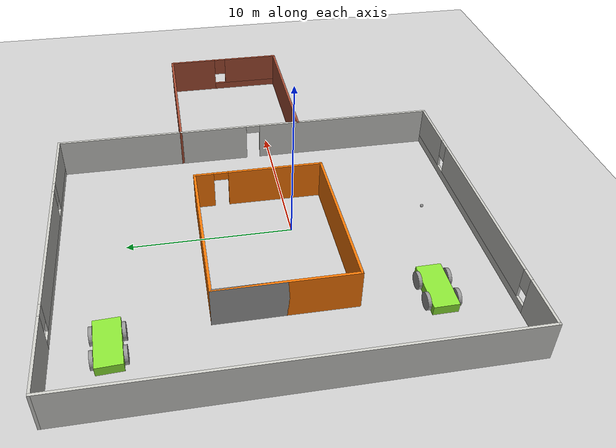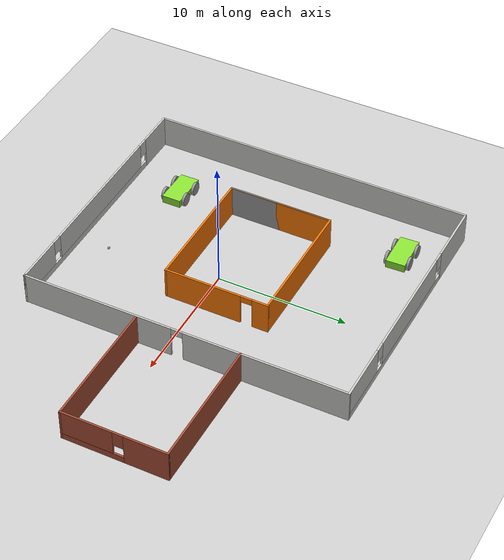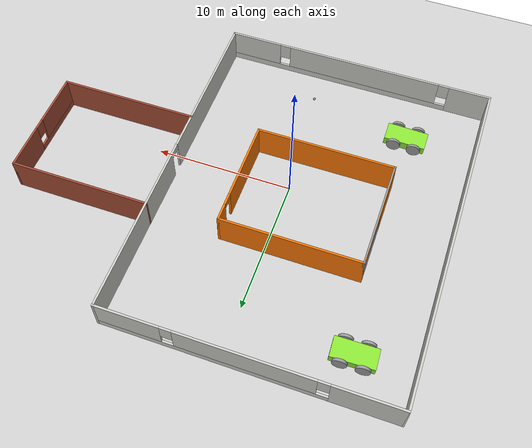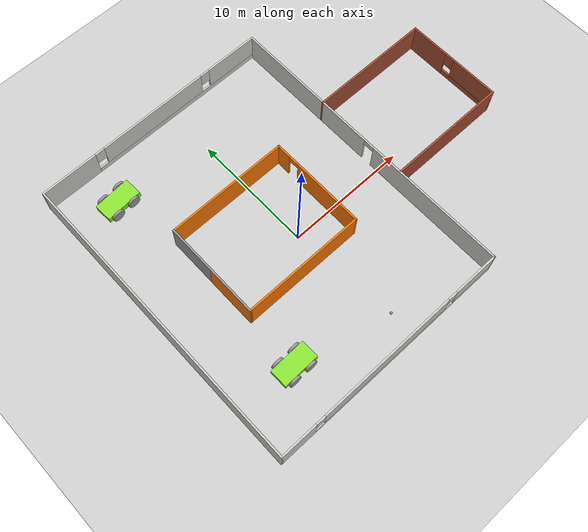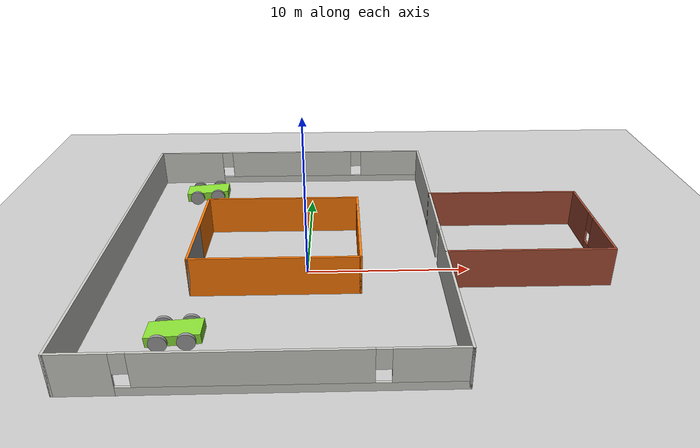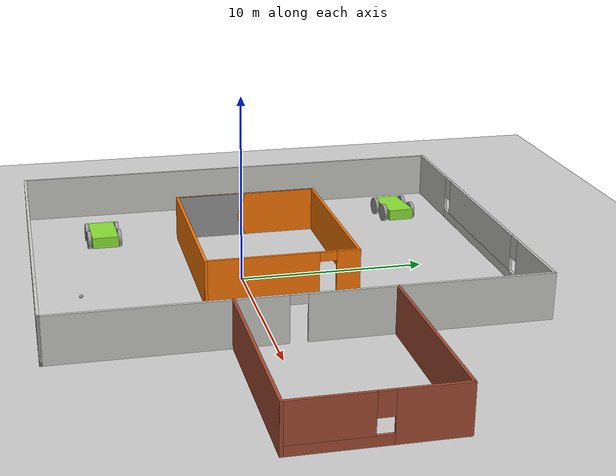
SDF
<sdf version="1.7">
 <world name="default">
  <plugin name="hello" filename="libhello.so"/>
  <light name="sun" type="directional">
   <pose>0 0 10 0 -0 0</pose>
   <diffuse>0.8 0.8 0.8 1</diffuse>
   <specular>0.2 0.2 0.2 1</specular>
   <attenuation>
    <range>1000</range>
    <constant>0.9</constant>
    <linear>0.01</linear>
    <quadratic>0.001</quadratic>
   </attenuation>
   <direction>-0.5 0.1 -0.9</direction>
   <spot><inner_angle>0</inner_angle><outer_angle>0</outer_angle><falloff>0</falloff></spot>
  </light>
  <model name="ground_plane">
   <static>1</static>
   <link name="link">
    <collision name="collision">
     <geometry><plane><normal>0 0 1</normal><size>100 100</size></plane></geometry>
     <surface>
      <contact><collide_bitmask>65535</collide_bitmask></contact>
      <friction><ode><mu>100</mu><mu2>50</mu2></ode></friction>
     </surface>
    </collision>
    <visual name="visual">
     <cast_shadows>0</cast_shadows>
     <geometry><plane><normal>0 0 1</normal><size>100 100</size></plane></geometry>
     <material>
      <script><uri>file://media/materials/scripts/gazebo.material</uri><name>Gazebo/Grey</name></script>
     </material>
    </visual>
   </link>
  </model>
  <gravity>0 0 -9.8</gravity>
  <magnetic_field>6e-06 2.3e-05 -4.2e-05</magnetic_field>
  <atmosphere type="adiabatic"/>
  <physics type="ode">
   <max_step_size>0.001</max_step_size>
   <real_time_factor>1</real_time_factor>
   <real_time_update_rate>1000</real_time_update_rate>
  </physics>
  <scene><ambient>0.4 0.4 0.4 1</ambient><background>0.7 0.7 0.7 1</background><shadows>1</shadows></scene>
  <spherical_coordinates>
   <surface_model>EARTH_WGS84</surface_model>
   <latitude_deg>0</latitude_deg>
   <longitude_deg>0</longitude_deg>
   <elevation>0</elevation>
   <heading_deg>0</heading_deg>
  </spherical_coordinates>
  <model name="building_env">
   <pose>3.21282 1.5276 0 0 -0 0</pose>
   <link name="Wall_36">
    <pose>-5 12.5 0 0 -0 0</pose>
    <visual name="Wall_36_Visual_0">
     <pose>-7.7073 0 1.25 0 -0 0</pose>
     <geometry><box><size>4.73541 0.15 2.5</size></box></geometry>
     <material>
      <script><uri>file://media/materials/scripts/gazebo.material</uri><name>Gazebo/CeilingTiled</name></script>
      <ambient>1 1 1 1</ambient>
     </material>
     <meta><layer>0</layer></meta>
    </visual>
    <collision name="Wall_36_Collision_0">
     <geometry><box><size>4.73541 0.15 2.5</size></box></geometry>
     <pose>-7.7073 0 1.25 0 -0 0</pose>
    </collision>
    <visual name="Wall_36_Visual_1">
     <pose>2.3677 0 0.25 0 -0 0</pose>
     <geometry><box><size>15.4146 0.15 0.5</size></box></geometry>
     <material>
      <script><uri>file://media/materials/scripts/gazebo.material</uri><name>Gazebo/CeilingTiled</name></script>
      <ambient>1 1 1 1</ambient>
     </material>
     <meta><layer>0</layer></meta>
    </visual>
    <collision name="Wall_36_Collision_1">
     <geometry><box><size>15.4146 0.15 0.5</size></box></geometry>
     <pose>2.3677 0 0.25 0 -0 0</pose>
    </collision>
    <visual name="Wall_36_Visual_2">
     <pose>0.099134 0 1.5 0 -0 0</pose>
     <geometry><box><size>9.27745 0.15 2</size></box></geometry>
     <material>
      <script><uri>file://media/materials/scripts/gazebo.material</uri><name>Gazebo/CeilingTiled</name></script>
      <ambient>1 1 1 1</ambient>
     </material>
     <meta><layer>0</layer></meta>
    </visual>
    <collision name="Wall_36_Collision_2">
     <geometry><box><size>9.27745 0.15 2</size></box></geometry>
     <pose>0.099134 0 1.5 0 -0 0</pose>
    </collision>
    <visual name="Wall_36_Visual_3">
     <pose>7.80643 0 1.5 0 -0 0</pose>
     <geometry><box><size>4.53714 0.15 2</size></box></geometry>
     <material>
      <script><uri>file://media/materials/scripts/gazebo.material</uri><name>Gazebo/CeilingTiled</name></script>
      <ambient>1 1 1 1</ambient>
     </material>
     <meta><layer>0</layer></meta>
    </visual>
    <collision name="Wall_36_Collision_3">
     <geometry><box><size>4.53714 0.15 2</size></box></geometry>
     <pose>7.80643 0 1.5 0 -0 0</pose>
    </collision>
    <visual name="Wall_36_Visual_4">
     <pose>-4.93959 0 1.9 0 -0 0</pose>
     <geometry><box><size>0.8 0.15 1.2</size></box></geometry>
     <material>
      <script><uri>file://media/materials/scripts/gazebo.material</uri><name>Gazebo/CeilingTiled</name></script>
      <ambient>1 1 1 1</ambient>
     </material>
     <meta><layer>0</layer></meta>
    </visual>
    <collision name="Wall_36_Collision_4">
     <geometry><box><size>0.8 0.15 1.2</size></box></geometry>
     <pose>-4.93959 0 1.9 0 -0 0</pose>
    </collision>
    <visual name="Wall_36_Visual_5">
     <pose>5.13786 0 1.9 0 -0 0</pose>
     <geometry><box><size>0.8 0.15 1.2</size></box></geometry>
     <material>
      <script><uri>file://media/materials/scripts/gazebo.material</uri><name>Gazebo/CeilingTiled</name></script>
      <ambient>1 1 1 1</ambient>
     </material>
     <meta><layer>0</layer></meta>
    </visual>
    <collision name="Wall_36_Collision_5">
     <geometry><box><size>0.8 0.15 1.2</size></box></geometry>
     <pose>5.13786 0 1.9 0 -0 0</pose>
    </collision>
   </link>
   <link name="Wall_38">
    <collision name="Wall_38_Collision">
     <geometry><box><size>25.15 0.15 2.5</size></box></geometry>
     <pose>0 0 1.25 0 -0 0</pose>
    </collision>
    <visual name="Wall_38_Visual">
     <pose>0 0 1.25 0 -0 0</pose>
     <geometry><box><size>25.15 0.15 2.5</size></box></geometry>
     <material>
      <script><uri>file://media/materials/scripts/gazebo.material</uri><name>Gazebo/CeilingTiled</name></script>
      <ambient>1 1 1 1</ambient>
     </material>
     <meta><layer>0</layer></meta>
    </visual>
    <pose>-15 0 0 0 -0 -1.5708</pose>
   </link>
   <link name="Wall_40">
    <pose>5 0 0 0 -0 -1.5708</pose>
    <visual name="Wall_40_Visual_0">
     <pose>-6.32697 0 1.25 0 -0 0</pose>
     <geometry><box><size>12.4961 0.15 2.5</size></box></geometry>
     <material>
      <script><uri>file://media/materials/scripts/gazebo.material</uri><name>Gazebo/CeilingTiled</name></script>
      <ambient>1 1 1 1</ambient>
     </material>
     <meta><layer>0</layer></meta>
    </visual>
    <collision name="Wall_40_Collision_0">
     <geometry><box><size>12.4961 0.15 2.5</size></box></geometry>
     <pose>-6.32697 0 1.25 0 -0 0</pose>
    </collision>
    <visual name="Wall_40_Visual_1">
     <pose>6.69803 0 1.25 0 -0 0</pose>
     <geometry><box><size>11.7539 0.15 2.5</size></box></geometry>
     <material>
      <script><uri>file://media/materials/scripts/gazebo.material</uri><name>Gazebo/CeilingTiled</name></script>
      <ambient>1 1 1 1</ambient>
     </material>
     <meta><layer>0</layer></meta>
    </visual>
    <collision name="Wall_40_Collision_1">
     <geometry><box><size>11.7539 0.15 2.5</size></box></geometry>
     <pose>6.69803 0 1.25 0 -0 0</pose>
    </collision>
    <visual name="Wall_40_Visual_2">
     <pose>0.37107 0 2.25 0 -0 0</pose>
     <geometry><box><size>0.9 0.15 0.5</size></box></geometry>
     <material>
      <script><uri>file://media/materials/scripts/gazebo.material</uri><name>Gazebo/CeilingTiled</name></script>
      <ambient>1 1 1 1</ambient>
     </material>
     <meta><layer>0</layer></meta>
    </visual>
    <collision name="Wall_40_Collision_2">
     <geometry><box><size>0.9 0.15 0.5</size></box></geometry>
     <pose>0.37107 0 2.25 0 -0 0</pose>
    </collision>
   </link>
   <link name="Wall_41">
    <collision name="Wall_41_Collision">
     <geometry><box><size>0.15 0.15 2.5</size></box></geometry>
     <pose>0 0 1.25 0 -0 0</pose>
    </collision>
    <visual name="Wall_41_Visual">
     <pose>0 0 1.25 0 -0 0</pose>
     <geometry><box><size>0.15 0.15 2.5</size></box></geometry>
     <material>
      <script><uri>file://media/materials/scripts/gazebo.material</uri><name>Gazebo/Grey</name></script>
      <ambient>1 1 1 1</ambient>
     </material>
     <meta><layer>0</layer></meta>
    </visual>
    <pose>5 -12.5 0 0 -0 0</pose>
   </link>
   <link name="Wall_49">
    <collision name="Wall_49_Collision">
     <geometry><box><size>8.15 0.15 2.5</size></box></geometry>
     <pose>0 0 1.25 0 -0 0</pose>
    </collision>
    <visual name="Wall_49_Visual">
     <pose>0 0 1.25 0 -0 0</pose>
     <geometry><box><size>8.15 0.15 2.5</size></box></geometry>
     <material>
      <script><uri>file://media/materials/scripts/gazebo.material</uri><name>Gazebo/Grey</name></script>
      <ambient>1 1 1 1</ambient>
     </material>
     <meta><layer>0</layer></meta>
    </visual>
    <pose>-10 0 0 0 -0 1.5708</pose>
   </link>
   <link name="Wall_50">
    <collision name="Wall_50_Collision">
     <geometry><box><size>8.15 0.15 2.5</size></box></geometry>
     <pose>0 0 1.25 0 -0 0</pose>
    </collision>
    <visual name="Wall_50_Visual">
     <pose>0 0 1.25 0 -0 0</pose>
     <geometry><box><size>8.15 0.15 2.5</size></box></geometry>
     <material>
      <script><uri>file://media/materials/scripts/gazebo.material</uri><name>Gazebo/Grey</name></script>
      <ambient>0.996078 0.47451 0.0196078 1</ambient>
     </material>
     <meta><layer>0</layer></meta>
    </visual>
    <pose>-10 0 0 0 -0 -1.5708</pose>
   </link>
   <link name="Wall_52">
    <pose>-5 -12.5 0 0 -0 0</pose>
    <visual name="Wall_52_Visual_0">
     <pose>-8.52725 0 1.25 0 -0 0</pose>
     <geometry><box><size>3.09551 0.15 2.5</size></box></geometry>
     <material>
      <script><uri>file://media/materials/scripts/gazebo.material</uri><name>Gazebo/CeilingTiled</name></script>
      <ambient>1 1 1 1</ambient>
     </material>
     <meta><layer>0</layer></meta>
    </visual>
    <collision name="Wall_52_Collision_0">
     <geometry><box><size>3.09551 0.15 2.5</size></box></geometry>
     <pose>-8.52725 0 1.25 0 -0 0</pose>
    </collision>
    <visual name="Wall_52_Visual_1">
     <pose>1.54775 0 0.25 0 -0 0</pose>
     <geometry><box><size>17.0545 0.15 0.5</size></box></geometry>
     <material>
      <script><uri>file://media/materials/scripts/gazebo.material</uri><name>Gazebo/CeilingTiled</name></script>
      <ambient>1 1 1 1</ambient>
     </material>
     <meta><layer>0</layer></meta>
    </visual>
    <collision name="Wall_52_Collision_1">
     <geometry><box><size>17.0545 0.15 0.5</size></box></geometry>
     <pose>1.54775 0 0.25 0 -0 0</pose>
    </collision>
    <visual name="Wall_52_Visual_2">
     <pose>-0.390191 0 1.5 0 -0 0</pose>
     <geometry><box><size>11.5786 0.15 2</size></box></geometry>
     <material>
      <script><uri>file://media/materials/scripts/gazebo.material</uri><name>Gazebo/CeilingTiled</name></script>
      <ambient>1 1 1 1</ambient>
     </material>
     <meta><layer>0</layer></meta>
    </visual>
    <collision name="Wall_52_Collision_2">
     <geometry><box><size>11.5786 0.15 2</size></box></geometry>
     <pose>-0.390191 0 1.5 0 -0 0</pose>
    </collision>
    <visual name="Wall_52_Visual_3">
     <pose>8.13705 0 1.5 0 -0 0</pose>
     <geometry><box><size>3.87589 0.15 2</size></box></geometry>
     <material>
      <script><uri>file://media/materials/scripts/gazebo.material</uri><name>Gazebo/CeilingTiled</name></script>
      <ambient>1 1 1 1</ambient>
     </material>
     <meta><layer>0</layer></meta>
    </visual>
    <collision name="Wall_52_Collision_3">
     <geometry><box><size>3.87589 0.15 2</size></box></geometry>
     <pose>8.13705 0 1.5 0 -0 0</pose>
    </collision>
    <visual name="Wall_52_Visual_4">
     <pose>-6.57949 0 1.9 0 -0 0</pose>
     <geometry><box><size>0.8 0.15 1.2</size></box></geometry>
     <material>
      <script><uri>file://media/materials/scripts/gazebo.material</uri><name>Gazebo/CeilingTiled</name></script>
      <ambient>1 1 1 1</ambient>
     </material>
     <meta><layer>0</layer></meta>
    </visual>
    <collision name="Wall_52_Collision_4">
     <geometry><box><size>0.8 0.15 1.2</size></box></geometry>
     <pose>-6.57949 0 1.9 0 -0 0</pose>
    </collision>
    <visual name="Wall_52_Visual_5">
     <pose>5.79911 0 1.9 0 -0 0</pose>
     <geometry><box><size>0.8 0.15 1.2</size></box></geometry>
     <material>
      <script><uri>file://media/materials/scripts/gazebo.material</uri><name>Gazebo/CeilingTiled</name></script>
      <ambient>1 1 1 1</ambient>
     </material>
     <meta><layer>0</layer></meta>
    </visual>
    <collision name="Wall_52_Collision_5">
     <geometry><box><size>0.8 0.15 1.2</size></box></geometry>
     <pose>5.79911 0 1.9 0 -0 0</pose>
    </collision>
   </link>
   <link name="Wall_54">
    <collision name="Wall_54_Collision">
     <geometry><box><size>10.15 0.15 2.5</size></box></geometry>
     <pose>0 0 1.25 0 -0 0</pose>
    </collision>
    <visual name="Wall_54_Visual">
     <pose>0 0 1.25 0 -0 0</pose>
     <geometry><box><size>10.15 0.15 2.5</size></box></geometry>
     <material>
      <script><uri>file://media/materials/scripts/gazebo.material</uri><name>Gazebo/Grey</name></script>
      <ambient>0.996078 0.47451 0.0196078 1</ambient>
     </material>
     <meta><layer>0</layer></meta>
    </visual>
    <pose>-5 4 0 0 -0 0</pose>
   </link>
   <link name="Wall_56">
    <collision name="Wall_56_Collision">
     <geometry><box><size>10.15 0.15 2.5</size></box></geometry>
     <pose>0 0 1.25 0 -0 0</pose>
    </collision>
    <visual name="Wall_56_Visual">
     <pose>0 0 1.25 0 -0 0</pose>
     <geometry><box><size>10.15 0.15 2.5</size></box></geometry>
     <material>
      <script><uri>file://media/materials/scripts/gazebo.material</uri><name>Gazebo/Grey</name></script>
      <ambient>0.996078 0.47451 0.0196078 1</ambient>
     </material>
     <meta><layer>0</layer></meta>
    </visual>
    <pose>-5 -4 0 0 -0 0</pose>
   </link>
   <link name="Wall_58">
    <pose>0 0 0 0 -0 -1.5708</pose>
    <visual name="Wall_58_Visual_0">
     <pose>-3.43914 0 1.25 0 -0 0</pose>
     <geometry><box><size>1.27172 0.15 2.5</size></box></geometry>
     <material>
      <script><uri>file://media/materials/scripts/gazebo.material</uri><name>Gazebo/Grey</name></script>
      <ambient>0.996078 0.47451 0.0196078 1</ambient>
     </material>
     <meta><layer>0</layer></meta>
    </visual>
    <collision name="Wall_58_Collision_0">
     <geometry><box><size>1.27172 0.15 2.5</size></box></geometry>
     <pose>-3.43914 0 1.25 0 -0 0</pose>
    </collision>
    <visual name="Wall_58_Visual_1">
     <pose>1.08586 0 1.25 0 -0 0</pose>
     <geometry><box><size>5.97828 0.15 2.5</size></box></geometry>
     <material>
      <script><uri>file://media/materials/scripts/gazebo.material</uri><name>Gazebo/Grey</name></script>
      <ambient>0.996078 0.47451 0.0196078 1</ambient>
     </material>
     <meta><layer>0</layer></meta>
    </visual>
    <collision name="Wall_58_Collision_1">
     <geometry><box><size>5.97828 0.15 2.5</size></box></geometry>
     <pose>1.08586 0 1.25 0 -0 0</pose>
    </collision>
    <visual name="Wall_58_Visual_2">
     <pose>-2.35328 0 2.25 0 -0 0</pose>
     <geometry><box><size>0.9 0.15 0.5</size></box></geometry>
     <material>
      <script><uri>file://media/materials/scripts/gazebo.material</uri><name>Gazebo/Grey</name></script>
      <ambient>0.996078 0.47451 0.0196078 1</ambient>
     </material>
     <meta><layer>0</layer></meta>
    </visual>
    <collision name="Wall_58_Collision_2">
     <geometry><box><size>0.9 0.15 0.5</size></box></geometry>
     <pose>-2.35328 0 2.25 0 -0 0</pose>
    </collision>
   </link>
   <link name="Wall_60">
    <collision name="Wall_60_Collision">
     <geometry><box><size>10.15 0.15 2.5</size></box></geometry>
     <pose>0 0 1.25 0 -0 0</pose>
    </collision>
    <visual name="Wall_60_Visual">
     <pose>0 0 1.25 0 -0 0</pose>
     <geometry><box><size>10.15 0.15 2.5</size></box></geometry>
     <material>
      <script><uri>file://media/materials/scripts/gazebo.material</uri><name>Gazebo/Bricks</name></script>
      <ambient>1 1 1 1</ambient>
     </material>
     <meta><layer>0</layer></meta>
    </visual>
    <pose>10 4.5 0 0 -0 0</pose>
   </link>
   <link name="Wall_62">
    <collision name="Wall_62_Collision">
     <geometry><box><size>10.15 0.15 2.5</size></box></geometry>
     <pose>0 0 1.25 0 -0 0</pose>
    </collision>
    <visual name="Wall_62_Visual">
     <pose>0 0 1.25 0 -0 0</pose>
     <geometry><box><size>10.15 0.15 2.5</size></box></geometry>
     <material>
      <script><uri>file://media/materials/scripts/gazebo.material</uri><name>Gazebo/Bricks</name></script>
      <ambient>1 1 1 1</ambient>
     </material>
     <meta><layer>0</layer></meta>
    </visual>
    <pose>10 -3.5 0 0 -0 0</pose>
   </link>
   <link name="Wall_64">
    <pose>15 0.5 0 0 -0 -1.5708</pose>
    <visual name="Wall_64_Visual_0">
     <pose>-2.39709 0 1.25 0 -0 0</pose>
     <geometry><box><size>3.35582 0.15 2.5</size></box></geometry>
     <material>
      <script><uri>file://media/materials/scripts/gazebo.material</uri><name>Gazebo/Bricks</name></script>
      <ambient>1 1 1 1</ambient>
     </material>
     <meta><layer>0</layer></meta>
    </visual>
    <collision name="Wall_64_Collision_0">
     <geometry><box><size>3.35582 0.15 2.5</size></box></geometry>
     <pose>-2.39709 0 1.25 0 -0 0</pose>
    </collision>
    <visual name="Wall_64_Visual_1">
     <pose>1.67791 0 0.25 0 -0 0</pose>
     <geometry><box><size>4.79418 0.15 0.5</size></box></geometry>
     <material>
      <script><uri>file://media/materials/scripts/gazebo.material</uri><name>Gazebo/Bricks</name></script>
      <ambient>1 1 1 1</ambient>
     </material>
     <meta><layer>0</layer></meta>
    </visual>
    <collision name="Wall_64_Collision_1">
     <geometry><box><size>4.79418 0.15 0.5</size></box></geometry>
     <pose>1.67791 0 0.25 0 -0 0</pose>
    </collision>
    <visual name="Wall_64_Visual_2">
     <pose>2.07791 0 1.5 0 -0 0</pose>
     <geometry><box><size>3.99418 0.15 2</size></box></geometry>
     <material>
      <script><uri>file://media/materials/scripts/gazebo.material</uri><name>Gazebo/Bricks</name></script>
      <ambient>1 1 1 1</ambient>
     </material>
     <meta><layer>0</layer></meta>
    </visual>
    <collision name="Wall_64_Collision_2">
     <geometry><box><size>3.99418 0.15 2</size></box></geometry>
     <pose>2.07791 0 1.5 0 -0 0</pose>
    </collision>
    <visual name="Wall_64_Visual_3">
     <pose>-0.31918 0 1.9 0 -0 0</pose>
     <geometry><box><size>0.8 0.15 1.2</size></box></geometry>
     <material>
      <script><uri>file://media/materials/scripts/gazebo.material</uri><name>Gazebo/Bricks</name></script>
      <ambient>1 1 1 1</ambient>
     </material>
     <meta><layer>0</layer></meta>
    </visual>
    <collision name="Wall_64_Collision_3">
     <geometry><box><size>0.8 0.15 1.2</size></box></geometry>
     <pose>-0.31918 0 1.9 0 -0 0</pose>
    </collision>
   </link>
   <static>1</static>
  </model>
  <model name="car_robot">
   <link name="link_2">
    <inertial>
     <mass>1</mass>
     <inertia><ixx>0.145833</ixx><ixy>0</ixy><ixz>0</ixz><iyy>0.145833</iyy><iyz>0</iyz><izz>0.125</izz></inertia>
    </inertial>
    <pose>-0.75 -0.853048 0 1.5707 -0 0</pose>
    <visual name="visual">
     <geometry><cylinder><radius>0.5</radius><length>0.2</length></cylinder></geometry>
     <material>
      <lighting>1</lighting>
      <script><uri>file://media/materials/scripts/gazebo.material</uri><name>Gazebo/Grey</name></script>
      <shader type="pixel"><normal_map>__default__</normal_map></shader>
      <ambient>0 0 0 1</ambient>
      <diffuse>0.18 0.204 0.212 1</diffuse>
      <specular>0.01 0.01 0.01 1</specular>
      <emissive>0 0 0 1</emissive>
     </material>
    </visual>
    <collision name="collision">
     <geometry><cylinder><radius>0.5</radius><length>0.2</length></cylinder></geometry>
     <surface>
      <friction>
       <ode><mu>1</mu><mu2>1</mu2><fdir1>0 0 0</fdir1><slip1>0</slip1><slip2>0</slip2></ode>
       <torsional>
        <coefficient>1</coefficient>
        <patch_radius>0</patch_radius>
        <surface_radius>0</surface_radius>
        <use_patch_radius>1</use_patch_radius>
        <ode><slip>0</slip></ode>
       </torsional>
      </friction>
      <bounce><restitution_coefficient>0</restitution_coefficient><threshold>1e+06</threshold></bounce>
      <contact>
       <collide_without_contact>0</collide_without_contact>
       <collide_without_contact_bitmask>1</collide_without_contact_bitmask>
       <collide_bitmask>1</collide_bitmask>
       <ode>
        <soft_cfm>0</soft_cfm>
        <soft_erp>0.2</soft_erp>
        <kp>1e+13</kp>
        <kd>1</kd>
        <max_vel>0.01</max_vel>
        <min_depth>0</min_depth>
       </ode>
       <bullet>
        <split_impulse>1</split_impulse>
        <split_impulse_penetration_threshold>-0.01</split_impulse_penetration_threshold>
        <soft_cfm>0</soft_cfm>
        <soft_erp>0.2</soft_erp>
        <kp>1e+13</kp>
        <kd>1</kd>
       </bullet>
      </contact>
     </surface>
    </collision>
   </link>
   <link name="link_2_clone">
    <inertial>
     <mass>1</mass>
     <inertia><ixx>0.145833</ixx><ixy>0</ixy><ixz>0</ixz><iyy>0.145833</iyy><iyz>0</iyz><izz>0.125</izz></inertia>
    </inertial>
    <pose>0.75 -0.853048 0 1.5707 -0 0</pose>
    <visual name="visual">
     <geometry><cylinder><radius>0.5</radius><length>0.2</length></cylinder></geometry>
     <material>
      <lighting>1</lighting>
      <script><uri>file://media/materials/scripts/gazebo.material</uri><name>Gazebo/Grey</name></script>
      <shader type="pixel"><normal_map>__default__</normal_map></shader>
      <ambient>0 0 0 1</ambient>
      <diffuse>0.18 0.204 0.212 1</diffuse>
      <specular>0.01 0.01 0.01 1</specular>
      <emissive>0 0 0 1</emissive>
     </material>
    </visual>
    <collision name="collision">
     <geometry><cylinder><radius>0.5</radius><length>0.2</length></cylinder></geometry>
     <surface>
      <friction>
       <ode><mu>1</mu><mu2>1</mu2><fdir1>0 0 0</fdir1><slip1>0</slip1><slip2>0</slip2></ode>
       <torsional>
        <coefficient>1</coefficient>
        <patch_radius>0</patch_radius>
        <surface_radius>0</surface_radius>
        <use_patch_radius>1</use_patch_radius>
        <ode><slip>0</slip></ode>
       </torsional>
      </friction>
      <bounce><restitution_coefficient>0</restitution_coefficient><threshold>1e+06</threshold></bounce>
      <contact>
       <collide_without_contact>0</collide_without_contact>
       <collide_without_contact_bitmask>1</collide_without_contact_bitmask>
       <collide_bitmask>1</collide_bitmask>
       <ode>
        <soft_cfm>0</soft_cfm>
        <soft_erp>0.2</soft_erp>
        <kp>1e+13</kp>
        <kd>1</kd>
        <max_vel>0.01</max_vel>
        <min_depth>0</min_depth>
       </ode>
       <bullet>
        <split_impulse>1</split_impulse>
        <split_impulse_penetration_threshold>-0.01</split_impulse_penetration_threshold>
        <soft_cfm>0</soft_cfm>
        <soft_erp>0.2</soft_erp>
        <kp>1e+13</kp>
        <kd>1</kd>
       </bullet>
      </contact>
     </surface>
    </collision>
   </link>
   <link name="link_2_clone_0">
    <inertial>
     <mass>1</mass>
     <inertia><ixx>0.145833</ixx><ixy>0</ixy><ixz>0</ixz><iyy>0.145833</iyy><iyz>0</iyz><izz>0.125</izz></inertia>
    </inertial>
    <pose>-0.75 0.847048 0 1.5707 -0 0</pose>
    <visual name="visual">
     <geometry><cylinder><radius>0.5</radius><length>0.2</length></cylinder></geometry>
     <material>
      <lighting>1</lighting>
      <script><uri>file://media/materials/scripts/gazebo.material</uri><name>Gazebo/Grey</name></script>
      <shader type="pixel"><normal_map>__default__</normal_map></shader>
      <ambient>0 0 0 1</ambient>
      <diffuse>0.18 0.204 0.212 1</diffuse>
      <specular>0.01 0.01 0.01 1</specular>
      <emissive>0 0 0 1</emissive>
     </material>
    </visual>
    <collision name="collision">
     <geometry><cylinder><radius>0.5</radius><length>0.2</length></cylinder></geometry>
     <surface>
      <friction>
       <ode><mu>1</mu><mu2>1</mu2><fdir1>0 0 0</fdir1><slip1>0</slip1><slip2>0</slip2></ode>
       <torsional>
        <coefficient>1</coefficient>
        <patch_radius>0</patch_radius>
        <surface_radius>0</surface_radius>
        <use_patch_radius>1</use_patch_radius>
        <ode><slip>0</slip></ode>
       </torsional>
      </friction>
      <bounce><restitution_coefficient>0</restitution_coefficient><threshold>1e+06</threshold></bounce>
      <contact>
       <collide_without_contact>0</collide_without_contact>
       <collide_without_contact_bitmask>1</collide_without_contact_bitmask>
       <collide_bitmask>1</collide_bitmask>
       <ode>
        <soft_cfm>0</soft_cfm>
        <soft_erp>0.2</soft_erp>
        <kp>1e+13</kp>
        <kd>1</kd>
        <max_vel>0.01</max_vel>
        <min_depth>0</min_depth>
       </ode>
       <bullet>
        <split_impulse>1</split_impulse>
        <split_impulse_penetration_threshold>-0.01</split_impulse_penetration_threshold>
        <soft_cfm>0</soft_cfm>
        <soft_erp>0.2</soft_erp>
        <kp>1e+13</kp>
        <kd>1</kd>
       </bullet>
      </contact>
     </surface>
    </collision>
   </link>
   <link name="link_2_clone_1">
    <inertial>
     <mass>1</mass>
     <inertia><ixx>0.145833</ixx><ixy>0</ixy><ixz>0</ixz><iyy>0.145833</iyy><iyz>0</iyz><izz>0.125</izz></inertia>
    </inertial>
    <pose>0.75 0.847048 0 1.5707 -0 0</pose>
    <visual name="visual">
     <geometry><cylinder><radius>0.5</radius><length>0.2</length></cylinder></geometry>
     <material>
      <lighting>1</lighting>
      <script><uri>file://media/materials/scripts/gazebo.material</uri><name>Gazebo/Grey</name></script>
      <shader type="pixel"><normal_map>__default__</normal_map></shader>
      <ambient>0 0 0 1</ambient>
      <diffuse>0.18 0.204 0.212 1</diffuse>
      <specular>0.01 0.01 0.01 1</specular>
      <emissive>0 0 0 1</emissive>
     </material>
    </visual>
    <collision name="collision">
     <geometry><cylinder><radius>0.5</radius><length>0.2</length></cylinder></geometry>
     <surface>
      <friction>
       <ode><mu>1</mu><mu2>1</mu2><fdir1>0 0 0</fdir1><slip1>0</slip1><slip2>0</slip2></ode>
       <torsional>
        <coefficient>1</coefficient>
        <patch_radius>0</patch_radius>
        <surface_radius>0</surface_radius>
        <use_patch_radius>1</use_patch_radius>
        <ode><slip>0</slip></ode>
       </torsional>
      </friction>
      <bounce><restitution_coefficient>0</restitution_coefficient><threshold>1e+06</threshold></bounce>
      <contact>
       <collide_without_contact>0</collide_without_contact>
       <collide_without_contact_bitmask>1</collide_without_contact_bitmask>
       <collide_bitmask>1</collide_bitmask>
       <ode>
        <soft_cfm>0</soft_cfm>
        <soft_erp>0.2</soft_erp>
        <kp>1e+13</kp>
        <kd>1</kd>
        <max_vel>0.01</max_vel>
        <min_depth>0</min_depth>
       </ode>
       <bullet>
        <split_impulse>1</split_impulse>
        <split_impulse_penetration_threshold>-0.01</split_impulse_penetration_threshold>
        <soft_cfm>0</soft_cfm>
        <soft_erp>0.2</soft_erp>
        <kp>1e+13</kp>
        <kd>1</kd>
       </bullet>
      </contact>
     </surface>
    </collision>
   </link>
   <link name="link_5">
    <inertial>
     <mass>1</mass>
     <inertia>
      <ixx>0.166667</ixx>
      <ixy>0</ixy>
      <ixz>0</ixz>
      <iyy>0.166667</iyy>
      <iyz>0</iyz>
      <izz>0.166667</izz>
     </inertia>
    </inertial>
    <pose>0 0.012 0 0 -0 0</pose>
    <visual name="visual">
     <geometry><box><size>3 1.47 0.6</size></box></geometry>
     <material>
      <lighting>1</lighting>
      <script><uri>file://media/materials/scripts/gazebo.material</uri><name>Gazebo/Grey</name></script>
      <shader type="pixel"><normal_map>__default__</normal_map></shader>
      <ambient>0.306 0.604 0.024 1</ambient>
      <diffuse>0.541 0.886 0.204 1</diffuse>
      <specular>0.01 0.01 0.01 1</specular>
      <emissive>0 0 0 1</emissive>
     </material>
    </visual>
    <collision name="collision">
     <geometry><box><size>3 1.5 0.6</size></box></geometry>
     <surface>
      <friction>
       <ode><mu>1</mu><mu2>1</mu2><fdir1>0 0 0</fdir1><slip1>0</slip1><slip2>0</slip2></ode>
       <torsional>
        <coefficient>1</coefficient>
        <patch_radius>0</patch_radius>
        <surface_radius>0</surface_radius>
        <use_patch_radius>1</use_patch_radius>
        <ode><slip>0</slip></ode>
       </torsional>
      </friction>
      <bounce><restitution_coefficient>0</restitution_coefficient><threshold>1e+06</threshold></bounce>
      <contact>
       <collide_without_contact>0</collide_without_contact>
       <collide_without_contact_bitmask>1</collide_without_contact_bitmask>
       <collide_bitmask>1</collide_bitmask>
       <ode>
        <soft_cfm>0</soft_cfm>
        <soft_erp>0.2</soft_erp>
        <kp>1e+13</kp>
        <kd>1</kd>
        <max_vel>0.01</max_vel>
        <min_depth>0</min_depth>
       </ode>
       <bullet>
        <split_impulse>1</split_impulse>
        <split_impulse_penetration_threshold>-0.01</split_impulse_penetration_threshold>
        <soft_cfm>0</soft_cfm>
        <soft_erp>0.2</soft_erp>
        <kp>1e+13</kp>
        <kd>1</kd>
       </bullet>
      </contact>
     </surface>
    </collision>
   </link>
   <joint name="link_5_JOINT_10" type="revolute">
    <parent>link_5</parent>
    <child>link_2</child>
    <axis>
     <xyz>0 0 1</xyz>
     <limit>
      <lower>-1.79769e+308</lower>
      <upper>1.79769e+308</upper>
      <effort>-1</effort>
      <velocity>-1</velocity>
     </limit>
     <dynamics>
      <spring_reference>0</spring_reference>
      <spring_stiffness>0</spring_stiffness>
      <damping>0</damping>
     </dynamics>
    </axis>
    <physics>
     <ode><limit><cfm>0</cfm><erp>0.2</erp></limit><suspension><cfm>0</cfm><erp>0.2</erp></suspension></ode>
    </physics>
   </joint>
   <joint name="link_5_JOINT_11" type="revolute">
    <parent>link_5</parent>
    <child>link_2_clone</child>
    <axis>
     <xyz>0 0 1</xyz>
     <limit>
      <lower>-1.79769e+308</lower>
      <upper>1.79769e+308</upper>
      <effort>-1</effort>
      <velocity>-1</velocity>
     </limit>
     <dynamics>
      <spring_reference>0</spring_reference>
      <spring_stiffness>0</spring_stiffness>
      <damping>0</damping>
     </dynamics>
    </axis>
    <physics>
     <ode><limit><cfm>0</cfm><erp>0.2</erp></limit><suspension><cfm>0</cfm><erp>0.2</erp></suspension></ode>
    </physics>
   </joint>
   <joint name="link_5_JOINT_12" type="revolute">
    <parent>link_5</parent>
    <child>link_2_clone_0</child>
    <axis>
     <xyz>0 0 1</xyz>
     <limit>
      <lower>-1.79769e+308</lower>
      <upper>1.79769e+308</upper>
      <effort>-1</effort>
      <velocity>-1</velocity>
     </limit>
     <dynamics>
      <spring_reference>0</spring_reference>
      <spring_stiffness>0</spring_stiffness>
      <damping>0</damping>
     </dynamics>
    </axis>
    <physics>
     <ode><limit><cfm>0</cfm><erp>0.2</erp></limit><suspension><cfm>0</cfm><erp>0.2</erp></suspension></ode>
    </physics>
   </joint>
   <joint name="link_5_JOINT_13" type="revolute">
    <parent>link_5</parent>
    <child>link_2_clone_1</child>
    <axis>
     <xyz>0 0 1</xyz>
     <limit>
      <lower>-1.79769e+308</lower>
      <upper>1.79769e+308</upper>
      <effort>-1</effort>
      <velocity>-1</velocity>
     </limit>
     <dynamics>
      <spring_reference>0</spring_reference>
      <spring_stiffness>0</spring_stiffness>
      <damping>0</damping>
     </dynamics>
    </axis>
    <physics>
     <ode><limit><cfm>0</cfm><erp>0.2</erp></limit><suspension><cfm>0</cfm><erp>0.2</erp></suspension></ode>
    </physics>
   </joint>
   <static>0</static>
   <pose>-6.75891 -6.83299 0.541509 1e-06 -0.055361 0.014258</pose>
  </model>
  <model name="car_robot_0">
   <link name="link_2">
    <inertial>
     <mass>1</mass>
     <inertia><ixx>0.145833</ixx><ixy>0</ixy><ixz>0</ixz><iyy>0.145833</iyy><iyz>0</iyz><izz>0.125</izz></inertia>
    </inertial>
    <pose>-0.75 -0.853048 0 1.5707 -0 0</pose>
    <visual name="visual">
     <geometry><cylinder><radius>0.5</radius><length>0.2</length></cylinder></geometry>
     <material>
      <lighting>1</lighting>
      <script><uri>file://media/materials/scripts/gazebo.material</uri><name>Gazebo/Grey</name></script>
      <shader type="pixel"><normal_map>__default__</normal_map></shader>
      <ambient>0 0 0 1</ambient>
      <diffuse>0.18 0.204 0.212 1</diffuse>
      <specular>0.01 0.01 0.01 1</specular>
      <emissive>0 0 0 1</emissive>
     </material>
    </visual>
    <collision name="collision">
     <geometry><cylinder><radius>0.5</radius><length>0.2</length></cylinder></geometry>
     <surface>
      <friction>
       <ode><mu>1</mu><mu2>1</mu2><fdir1>0 0 0</fdir1><slip1>0</slip1><slip2>0</slip2></ode>
       <torsional>
        <coefficient>1</coefficient>
        <patch_radius>0</patch_radius>
        <surface_radius>0</surface_radius>
        <use_patch_radius>1</use_patch_radius>
        <ode><slip>0</slip></ode>
       </torsional>
      </friction>
      <bounce><restitution_coefficient>0</restitution_coefficient><threshold>1e+06</threshold></bounce>
      <contact>
       <collide_without_contact>0</collide_without_contact>
       <collide_without_contact_bitmask>1</collide_without_contact_bitmask>
       <collide_bitmask>1</collide_bitmask>
       <ode>
        <soft_cfm>0</soft_cfm>
        <soft_erp>0.2</soft_erp>
        <kp>1e+13</kp>
        <kd>1</kd>
        <max_vel>0.01</max_vel>
        <min_depth>0</min_depth>
       </ode>
       <bullet>
        <split_impulse>1</split_impulse>
        <split_impulse_penetration_threshold>-0.01</split_impulse_penetration_threshold>
        <soft_cfm>0</soft_cfm>
        <soft_erp>0.2</soft_erp>
        <kp>1e+13</kp>
        <kd>1</kd>
       </bullet>
      </contact>
     </surface>
    </collision>
   </link>
   <link name="link_2_clone">
    <inertial>
     <mass>1</mass>
     <inertia><ixx>0.145833</ixx><ixy>0</ixy><ixz>0</ixz><iyy>0.145833</iyy><iyz>0</iyz><izz>0.125</izz></inertia>
    </inertial>
    <pose>0.75 -0.853048 0 1.5707 -0 0</pose>
    <visual name="visual">
     <geometry><cylinder><radius>0.5</radius><length>0.2</length></cylinder></geometry>
     <material>
      <lighting>1</lighting>
      <script><uri>file://media/materials/scripts/gazebo.material</uri><name>Gazebo/Grey</name></script>
      <shader type="pixel"><normal_map>__default__</normal_map></shader>
      <ambient>0 0 0 1</ambient>
      <diffuse>0.18 0.204 0.212 1</diffuse>
      <specular>0.01 0.01 0.01 1</specular>
      <emissive>0 0 0 1</emissive>
     </material>
    </visual>
    <collision name="collision">
     <geometry><cylinder><radius>0.5</radius><length>0.2</length></cylinder></geometry>
     <surface>
      <friction>
       <ode><mu>1</mu><mu2>1</mu2><fdir1>0 0 0</fdir1><slip1>0</slip1><slip2>0</slip2></ode>
       <torsional>
        <coefficient>1</coefficient>
        <patch_radius>0</patch_radius>
        <surface_radius>0</surface_radius>
        <use_patch_radius>1</use_patch_radius>
        <ode><slip>0</slip></ode>
       </torsional>
      </friction>
      <bounce><restitution_coefficient>0</restitution_coefficient><threshold>1e+06</threshold></bounce>
      <contact>
       <collide_without_contact>0</collide_without_contact>
       <collide_without_contact_bitmask>1</collide_without_contact_bitmask>
       <collide_bitmask>1</collide_bitmask>
       <ode>
        <soft_cfm>0</soft_cfm>
        <soft_erp>0.2</soft_erp>
        <kp>1e+13</kp>
        <kd>1</kd>
        <max_vel>0.01</max_vel>
        <min_depth>0</min_depth>
       </ode>
       <bullet>
        <split_impulse>1</split_impulse>
        <split_impulse_penetration_threshold>-0.01</split_impulse_penetration_threshold>
        <soft_cfm>0</soft_cfm>
        <soft_erp>0.2</soft_erp>
        <kp>1e+13</kp>
        <kd>1</kd>
       </bullet>
      </contact>
     </surface>
    </collision>
   </link>
   <link name="link_2_clone_0">
    <inertial>
     <mass>1</mass>
     <inertia><ixx>0.145833</ixx><ixy>0</ixy><ixz>0</ixz><iyy>0.145833</iyy><iyz>0</iyz><izz>0.125</izz></inertia>
    </inertial>
    <pose>-0.75 0.847048 0 1.5707 -0 0</pose>
    <visual name="visual">
     <geometry><cylinder><radius>0.5</radius><length>0.2</length></cylinder></geometry>
     <material>
      <lighting>1</lighting>
      <script><uri>file://media/materials/scripts/gazebo.material</uri><name>Gazebo/Grey</name></script>
      <shader type="pixel"><normal_map>__default__</normal_map></shader>
      <ambient>0 0 0 1</ambient>
      <diffuse>0.18 0.204 0.212 1</diffuse>
      <specular>0.01 0.01 0.01 1</specular>
      <emissive>0 0 0 1</emissive>
     </material>
    </visual>
    <collision name="collision">
     <geometry><cylinder><radius>0.5</radius><length>0.2</length></cylinder></geometry>
     <surface>
      <friction>
       <ode><mu>1</mu><mu2>1</mu2><fdir1>0 0 0</fdir1><slip1>0</slip1><slip2>0</slip2></ode>
       <torsional>
        <coefficient>1</coefficient>
        <patch_radius>0</patch_radius>
        <surface_radius>0</surface_radius>
        <use_patch_radius>1</use_patch_radius>
        <ode><slip>0</slip></ode>
       </torsional>
      </friction>
      <bounce><restitution_coefficient>0</restitution_coefficient><threshold>1e+06</threshold></bounce>
      <contact>
       <collide_without_contact>0</collide_without_contact>
       <collide_without_contact_bitmask>1</collide_without_contact_bitmask>
       <collide_bitmask>1</collide_bitmask>
       <ode>
        <soft_cfm>0</soft_cfm>
        <soft_erp>0.2</soft_erp>
        <kp>1e+13</kp>
        <kd>1</kd>
        <max_vel>0.01</max_vel>
        <min_depth>0</min_depth>
       </ode>
       <bullet>
        <split_impulse>1</split_impulse>
        <split_impulse_penetration_threshold>-0.01</split_impulse_penetration_threshold>
        <soft_cfm>0</soft_cfm>
        <soft_erp>0.2</soft_erp>
        <kp>1e+13</kp>
        <kd>1</kd>
       </bullet>
      </contact>
     </surface>
    </collision>
   </link>
   <link name="link_2_clone_1">
    <inertial>
     <mass>1</mass>
     <inertia><ixx>0.145833</ixx><ixy>0</ixy><ixz>0</ixz><iyy>0.145833</iyy><iyz>0</iyz><izz>0.125</izz></inertia>
    </inertial>
    <pose>0.75 0.847048 0 1.5707 -0 0</pose>
    <visual name="visual">
     <geometry><cylinder><radius>0.5</radius><length>0.2</length></cylinder></geometry>
     <material>
      <lighting>1</lighting>
      <script><uri>file://media/materials/scripts/gazebo.material</uri><name>Gazebo/Grey</name></script>
      <shader type="pixel"><normal_map>__default__</normal_map></shader>
      <ambient>0 0 0 1</ambient>
      <diffuse>0.18 0.204 0.212 1</diffuse>
      <specular>0.01 0.01 0.01 1</specular>
      <emissive>0 0 0 1</emissive>
     </material>
    </visual>
    <collision name="collision">
     <geometry><cylinder><radius>0.5</radius><length>0.2</length></cylinder></geometry>
     <surface>
      <friction>
       <ode><mu>1</mu><mu2>1</mu2><fdir1>0 0 0</fdir1><slip1>0</slip1><slip2>0</slip2></ode>
       <torsional>
        <coefficient>1</coefficient>
        <patch_radius>0</patch_radius>
        <surface_radius>0</surface_radius>
        <use_patch_radius>1</use_patch_radius>
        <ode><slip>0</slip></ode>
       </torsional>
      </friction>
      <bounce><restitution_coefficient>0</restitution_coefficient><threshold>1e+06</threshold></bounce>
      <contact>
       <collide_without_contact>0</collide_without_contact>
       <collide_without_contact_bitmask>1</collide_without_contact_bitmask>
       <collide_bitmask>1</collide_bitmask>
       <ode>
        <soft_cfm>0</soft_cfm>
        <soft_erp>0.2</soft_erp>
        <kp>1e+13</kp>
        <kd>1</kd>
        <max_vel>0.01</max_vel>
        <min_depth>0</min_depth>
       </ode>
       <bullet>
        <split_impulse>1</split_impulse>
        <split_impulse_penetration_threshold>-0.01</split_impulse_penetration_threshold>
        <soft_cfm>0</soft_cfm>
        <soft_erp>0.2</soft_erp>
        <kp>1e+13</kp>
        <kd>1</kd>
       </bullet>
      </contact>
     </surface>
    </collision>
   </link>
   <link name="link_5">
    <inertial>
     <mass>1</mass>
     <inertia>
      <ixx>0.166667</ixx>
      <ixy>0</ixy>
      <ixz>0</ixz>
      <iyy>0.166667</iyy>
      <iyz>0</iyz>
      <izz>0.166667</izz>
     </inertia>
    </inertial>
    <pose>0 0.012 0 0 -0 0</pose>
    <visual name="visual">
     <geometry><box><size>3 1.47 0.6</size></box></geometry>
     <material>
      <lighting>1</lighting>
      <script><uri>file://media/materials/scripts/gazebo.material</uri><name>Gazebo/Grey</name></script>
      <shader type="pixel"><normal_map>__default__</normal_map></shader>
      <ambient>0.306 0.604 0.024 1</ambient>
      <diffuse>0.541 0.886 0.204 1</diffuse>
      <specular>0.01 0.01 0.01 1</specular>
      <emissive>0 0 0 1</emissive>
     </material>
    </visual>
    <collision name="collision">
     <geometry><box><size>3 1.5 0.6</size></box></geometry>
     <surface>
      <friction>
       <ode><mu>1</mu><mu2>1</mu2><fdir1>0 0 0</fdir1><slip1>0</slip1><slip2>0</slip2></ode>
       <torsional>
        <coefficient>1</coefficient>
        <patch_radius>0</patch_radius>
        <surface_radius>0</surface_radius>
        <use_patch_radius>1</use_patch_radius>
        <ode><slip>0</slip></ode>
       </torsional>
      </friction>
      <bounce><restitution_coefficient>0</restitution_coefficient><threshold>1e+06</threshold></bounce>
      <contact>
       <collide_without_contact>0</collide_without_contact>
       <collide_without_contact_bitmask>1</collide_without_contact_bitmask>
       <collide_bitmask>1</collide_bitmask>
       <ode>
        <soft_cfm>0</soft_cfm>
        <soft_erp>0.2</soft_erp>
        <kp>1e+13</kp>
        <kd>1</kd>
        <max_vel>0.01</max_vel>
        <min_depth>0</min_depth>
       </ode>
       <bullet>
        <split_impulse>1</split_impulse>
        <split_impulse_penetration_threshold>-0.01</split_impulse_penetration_threshold>
        <soft_cfm>0</soft_cfm>
        <soft_erp>0.2</soft_erp>
        <kp>1e+13</kp>
        <kd>1</kd>
       </bullet>
      </contact>
     </surface>
    </collision>
   </link>
   <joint name="link_5_JOINT_10" type="revolute">
    <parent>link_5</parent>
    <child>link_2</child>
    <axis>
     <xyz>0 0 1</xyz>
     <limit>
      <lower>-1.79769e+308</lower>
      <upper>1.79769e+308</upper>
      <effort>-1</effort>
      <velocity>-1</velocity>
     </limit>
     <dynamics>
      <spring_reference>0</spring_reference>
      <spring_stiffness>0</spring_stiffness>
      <damping>0</damping>
     </dynamics>
    </axis>
    <physics>
     <ode><limit><cfm>0</cfm><erp>0.2</erp></limit><suspension><cfm>0</cfm><erp>0.2</erp></suspension></ode>
    </physics>
   </joint>
   <joint name="link_5_JOINT_11" type="revolute">
    <parent>link_5</parent>
    <child>link_2_clone</child>
    <axis>
     <xyz>0 0 1</xyz>
     <limit>
      <lower>-1.79769e+308</lower>
      <upper>1.79769e+308</upper>
      <effort>-1</effort>
      <velocity>-1</velocity>
     </limit>
     <dynamics>
      <spring_reference>0</spring_reference>
      <spring_stiffness>0</spring_stiffness>
      <damping>0</damping>
     </dynamics>
    </axis>
    <physics>
     <ode><limit><cfm>0</cfm><erp>0.2</erp></limit><suspension><cfm>0</cfm><erp>0.2</erp></suspension></ode>
    </physics>
   </joint>
   <joint name="link_5_JOINT_12" type="revolute">
    <parent>link_5</parent>
    <child>link_2_clone_0</child>
    <axis>
     <xyz>0 0 1</xyz>
     <limit>
      <lower>-1.79769e+308</lower>
      <upper>1.79769e+308</upper>
      <effort>-1</effort>
      <velocity>-1</velocity>
     </limit>
     <dynamics>
      <spring_reference>0</spring_reference>
      <spring_stiffness>0</spring_stiffness>
      <damping>0</damping>
     </dynamics>
    </axis>
    <physics>
     <ode><limit><cfm>0</cfm><erp>0.2</erp></limit><suspension><cfm>0</cfm><erp>0.2</erp></suspension></ode>
    </physics>
   </joint>
   <joint name="link_5_JOINT_13" type="revolute">
    <parent>link_5</parent>
    <child>link_2_clone_1</child>
    <axis>
     <xyz>0 0 1</xyz>
     <limit>
      <lower>-1.79769e+308</lower>
      <upper>1.79769e+308</upper>
      <effort>-1</effort>
      <velocity>-1</velocity>
     </limit>
     <dynamics>
      <spring_reference>0</spring_reference>
      <spring_stiffness>0</spring_stiffness>
      <damping>0</damping>
     </dynamics>
    </axis>
    <physics>
     <ode><limit><cfm>0</cfm><erp>0.2</erp></limit><suspension><cfm>0</cfm><erp>0.2</erp></suspension></ode>
    </physics>
   </joint>
   <static>0</static>
   <pose>-7.83781 10.875 0.540366 -1e-06 -0.05384 0.046864</pose>
  </model>
  <model name="white_ball">
   <link name="link_0">
    <inertial>
     <mass>1</mass>
     <inertia><ixx>0.1</ixx><ixy>0</ixy><ixz>0</ixz><iyy>0.1</iyy><iyz>0</iyz><izz>0.1</izz></inertia>
    </inertial>
    <visual name="visual">
     <geometry><sphere><radius>0.1</radius></sphere></geometry>
     <material>
      <lighting>1</lighting>
      <script><uri>file://media/materials/scripts/gazebo.material</uri><name>Gazebo/Grey</name></script>
      <shader type="pixel"><normal_map>__default__</normal_map></shader>
      <ambient>1 1 1 1</ambient>
      <diffuse>1 1 1 1</diffuse>
      <specular>1 1 1 1</specular>
      <emissive>1 1 1 1</emissive>
     </material>
    </visual>
    <collision name="collision">
     <geometry><sphere><radius>0.1</radius></sphere></geometry>
     <surface>
      <friction>
       <ode><mu>1</mu><mu2>1</mu2><fdir1>0 0 0</fdir1><slip1>0</slip1><slip2>0</slip2></ode>
       <torsional>
        <coefficient>1</coefficient>
        <patch_radius>0</patch_radius>
        <surface_radius>0</surface_radius>
        <use_patch_radius>1</use_patch_radius>
        <ode><slip>0</slip></ode>
       </torsional>
      </friction>
      <bounce><restitution_coefficient>0</restitution_coefficient><threshold>1e+06</threshold></bounce>
      <contact>
       <collide_without_contact>0</collide_without_contact>
       <collide_without_contact_bitmask>1</collide_without_contact_bitmask>
       <collide_bitmask>1</collide_bitmask>
       <ode>
        <soft_cfm>0</soft_cfm>
        <soft_erp>0.2</soft_erp>
        <kp>1e+13</kp>
        <kd>1</kd>
        <max_vel>0.01</max_vel>
        <min_depth>0</min_depth>
       </ode>
       <bullet>
        <split_impulse>1</split_impulse>
        <split_impulse_penetration_threshold>-0.01</split_impulse_penetration_threshold>
        <soft_cfm>0</soft_cfm>
        <soft_erp>0.2</soft_erp>
        <kp>1e+13</kp>
        <kd>1</kd>
       </bullet>
      </contact>
     </surface>
    </collision>
   </link>
   <static>0</static>
   <pose>0.839755 -8.63359 0.1 0 -0 0</pose>
  </model>
 </world>
</sdf>
